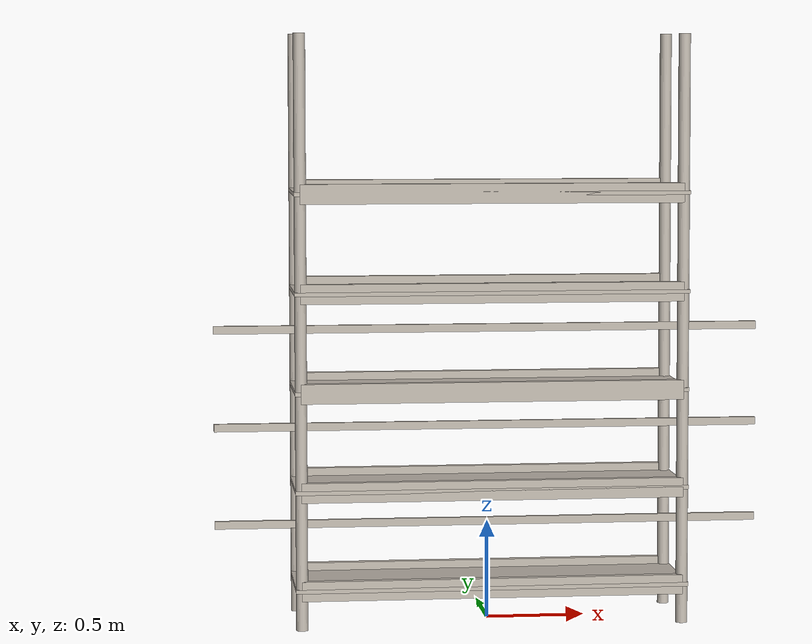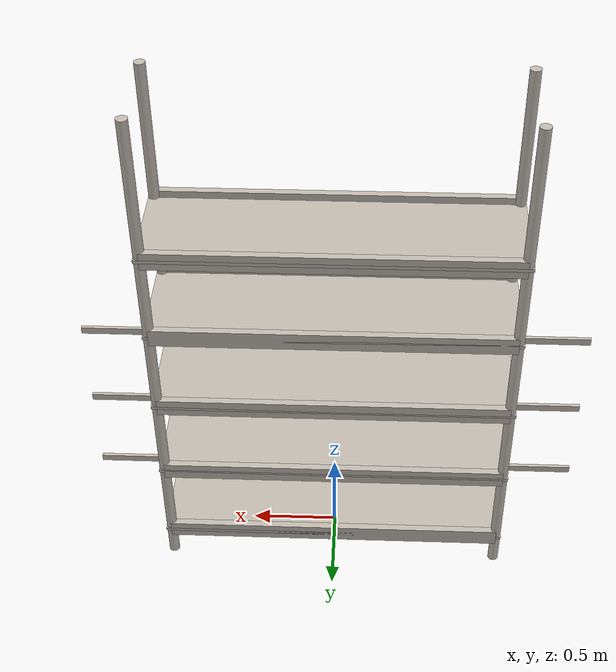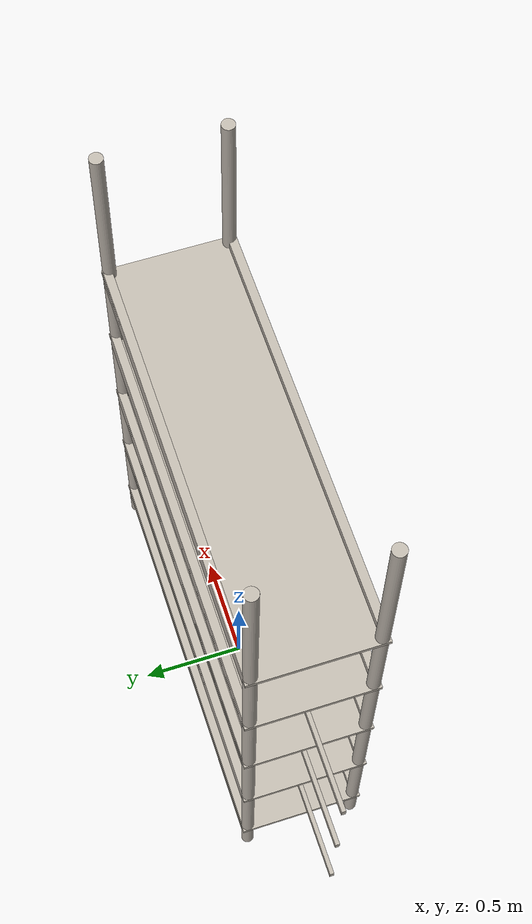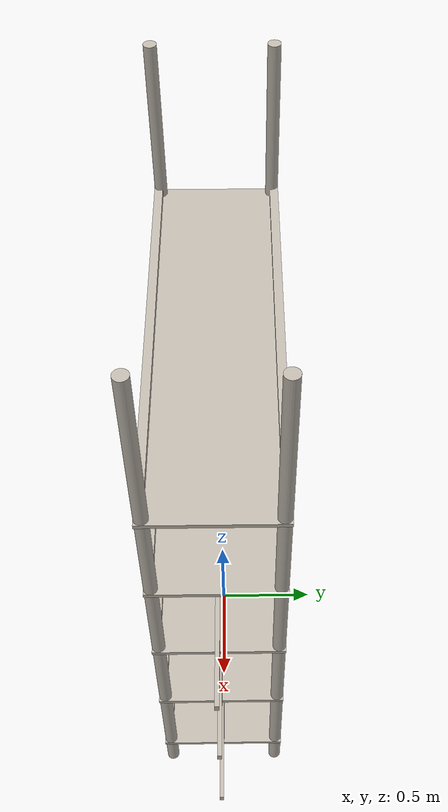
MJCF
<mujoco model="warehouse_shelf">
  <asset>
    <!-- Professional metal textures -->
    <texture name="steel_frame" type="2d"
             file="../desk/textures/metal2.png"/>
    <texture name="perforated_metal" type="2d"
             file="../desk/textures/metal4.png"/>

    <!-- Materials -->
    <material name="steel_structure" texture="steel_frame"
              texrepeat="2 4"
              specular="0.8"
              shininess="0.7"
              reflectance="0.4"/>
    <material name="mesh_shelf" texture="perforated_metal"
              texrepeat="8 4"
              specular="0.7"
              shininess="0.6"
              reflectance="0.3"/>
  </asset>

  <worldbody>
    <body name="warehouse_shelf">
      <!-- Heavy-duty industrial shelving unit 2m wide, 0.6m deep, 3m tall -->

      <!-- Vertical posts (4 corners) -->
      <geom name="post_fl" type="cylinder"
            size="0.03 1.5"
            pos="-0.97 -0.27 1.5"
            material="steel_structure"
            mass="8"/>
      <geom name="post_fr" type="cylinder"
            size="0.03 1.5"
            pos="0.97 -0.27 1.5"
            material="steel_structure"
            mass="8"/>
      <geom name="post_bl" type="cylinder"
            size="0.03 1.5"
            pos="-0.97 0.27 1.5"
            material="steel_structure"
            mass="8"/>
      <geom name="post_br" type="cylinder"
            size="0.03 1.5"
            pos="0.97 0.27 1.5"
            material="steel_structure"
            mass="8"/>

      <!-- Steel mesh shelves (5 levels) -->
      <!-- Bottom shelf -->
      <geom name="shelf_0" type="box"
            size="1.0 0.3 0.01"
            pos="0 0 0.2"
            material="mesh_shelf"
            mass="6"
            friction="1.5 0.1 0.1"/>

      <!-- Shelf supports -->
      <geom name="support_0_f" type="box"
            size="0.97 0.02 0.05"
            pos="0 -0.28 0.2"
            material="steel_structure"/>
      <geom name="support_0_b" type="box"
            size="0.97 0.02 0.05"
            pos="0 0.28 0.2"
            material="steel_structure"/>

      <!-- Level 1 shelf -->
      <geom name="shelf_1" type="box"
            size="1.0 0.3 0.01"
            pos="0 0 0.7"
            material="mesh_shelf"
            mass="6"
            friction="1.5 0.1 0.1"/>
      <geom name="support_1_f" type="box"
            size="0.97 0.02 0.05"
            pos="0 -0.28 0.7"
            material="steel_structure"/>
      <geom name="support_1_b" type="box"
            size="0.97 0.02 0.05"
            pos="0 0.28 0.7"
            material="steel_structure"/>

      <!-- Level 2 shelf -->
      <geom name="shelf_2" type="box"
            size="1.0 0.3 0.01"
            pos="0 0 1.2"
            material="mesh_shelf"
            mass="6"
            friction="1.5 0.1 0.1"/>
      <geom name="support_2_f" type="box"
            size="0.97 0.02 0.05"
            pos="0 -0.28 1.2"
            material="steel_structure"/>
      <geom name="support_2_b" type="box"
            size="0.97 0.02 0.05"
            pos="0 0.28 1.2"
            material="steel_structure"/>

      <!-- Level 3 shelf -->
      <geom name="shelf_3" type="box"
            size="1.0 0.3 0.01"
            pos="0 0 1.7"
            material="mesh_shelf"
            mass="6"
            friction="1.5 0.1 0.1"/>
      <geom name="support_3_f" type="box"
            size="0.97 0.02 0.05"
            pos="0 -0.28 1.7"
            material="steel_structure"/>
      <geom name="support_3_b" type="box"
            size="0.97 0.02 0.05"
            pos="0 0.28 1.7"
            material="steel_structure"/>

      <!-- Top shelf -->
      <geom name="shelf_4" type="box"
            size="1.0 0.3 0.01"
            pos="0 0 2.2"
            material="mesh_shelf"
            mass="6"
            friction="1.5 0.1 0.1"/>
      <geom name="support_4_f" type="box"
            size="0.97 0.02 0.05"
            pos="0 -0.28 2.2"
            material="steel_structure"/>
      <geom name="support_4_b" type="box"
            size="0.97 0.02 0.05"
            pos="0 0.28 2.2"
            material="steel_structure"/>

      <!-- Cross bracing for stability -->
      <geom name="brace_1" type="box"
            size="1.4 0.01 0.02"
            pos="0 0 0.5"
            euler="0 0 0"
            material="steel_structure"/>
      <geom name="brace_2" type="box"
            size="1.4 0.01 0.02"
            pos="0 0 1.0"
            euler="0 0 0"
            material="steel_structure"/>
      <geom name="brace_3" type="box"
            size="1.4 0.01 0.02"
            pos="0 0 1.5"
            euler="0 0 0"
            material="steel_structure"/>
    </body>
  </worldbody>
</mujoco>
